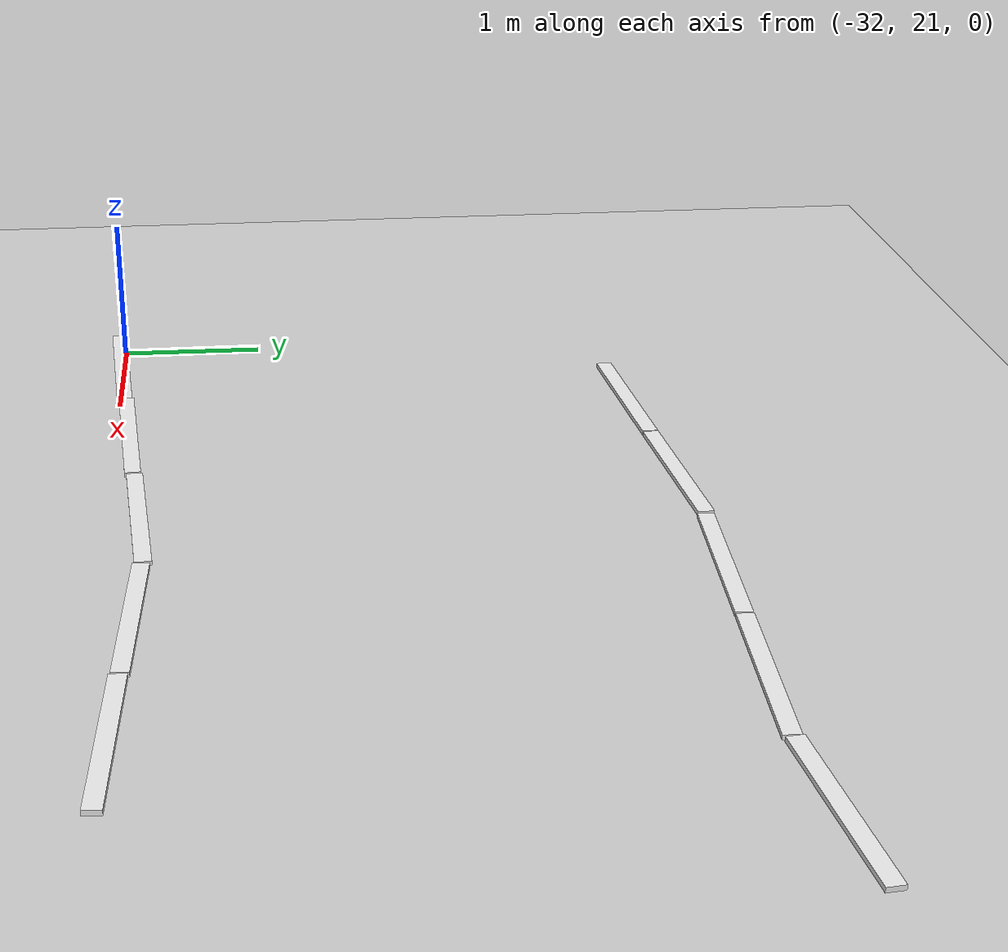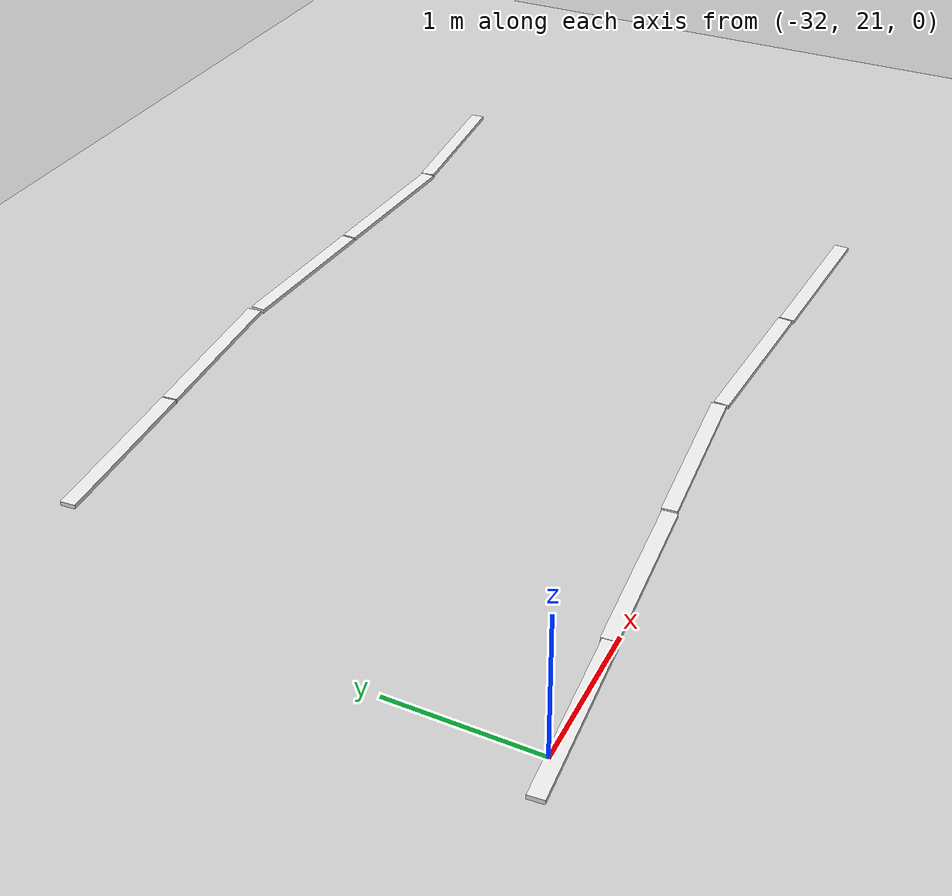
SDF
<sdf version="1.7">
 <world name="default">
  <model name="ground_plane">
   <static>1</static>
   <link name="link">
    <collision name="collision">
     <geometry><plane><normal>0 0 1</normal><size>100 100</size></plane></geometry>
     <surface><friction><ode><mu>100</mu><mu2>50</mu2></ode></friction></surface>
    </collision>
    <visual name="visual">
     <cast_shadows>0</cast_shadows>
     <geometry><plane><normal>0 0 1</normal><size>100 100</size></plane></geometry>
     <material>
      <script><uri>file://media/materials/scripts/gazebo.material</uri><name>Gazebo/Grey</name></script>
     </material>
    </visual>
   </link>
  </model>
  <model name="road_way_clone_clone_clone_0_clone_clone_clone_clone_0_clone_0_clone_0_clone_clone_clone_clone_clone_clone_clone_8">
   <link name="link">
    <inertial>
     <mass>1</mass>
     <inertia>
      <ixx>0.166667</ixx>
      <ixy>0</ixy>
      <ixz>0</ixz>
      <iyy>0.166667</iyy>
      <iyz>0</iyz>
      <izz>0.166667</izz>
     </inertia>
    </inertial>
    <visual name="visual">
     <geometry><box><size>0.106644 1.22348 0.03129</size></box></geometry>
     <material>
      <script><name>Gazebo/White</name><uri>file://media/materials/scripts/gazebo.material</uri></script>
      <shader type="pixel"><normal_map>__default__</normal_map></shader>
      <ambient>1 1 1 1</ambient>
      <diffuse>1 1 1 1</diffuse>
      <specular>0 0 0 1</specular>
      <emissive>0 0 0 1</emissive>
     </material>
    </visual>
    <collision name="collision">
     <geometry><box><size>0.10644 1.22348 0.03129</size></box></geometry>
     <surface>
      <friction>
       <ode><mu>1</mu><mu2>1</mu2><fdir1>0 0 0</fdir1><slip1>0</slip1><slip2>0</slip2></ode>
       <torsional>
        <coefficient>1</coefficient>
        <patch_radius>0</patch_radius>
        <surface_radius>0</surface_radius>
        <use_patch_radius>1</use_patch_radius>
        <ode><slip>0</slip></ode>
       </torsional>
      </friction>
      <bounce><restitution_coefficient>0</restitution_coefficient><threshold>1e+06</threshold></bounce>
      <contact>
       <collide_without_contact>0</collide_without_contact>
       <collide_without_contact_bitmask>1</collide_without_contact_bitmask>
       <collide_bitmask>1</collide_bitmask>
       <ode>
        <soft_cfm>0</soft_cfm>
        <soft_erp>0.2</soft_erp>
        <kp>1e+13</kp>
        <kd>1</kd>
        <max_vel>0.01</max_vel>
        <min_depth>0</min_depth>
       </ode>
       <bullet>
        <split_impulse>1</split_impulse>
        <split_impulse_penetration_threshold>-0.01</split_impulse_penetration_threshold>
        <soft_cfm>0</soft_cfm>
        <soft_erp>0.2</soft_erp>
        <kp>1e+13</kp>
        <kd>1</kd>
       </bullet>
      </contact>
     </surface>
    </collision>
   </link>
   <static>0</static>
   <pose>-25.859 24.6643 0.015638 1.1e-05 0 1.66873</pose>
  </model>
  <model name="road_way_clone_clone_clone_0_clone_clone_clone_clone_0_clone_0_clone_0_clone_clone_clone_clone_clone_clone_clone_10">
   <link name="link">
    <inertial>
     <mass>1</mass>
     <inertia>
      <ixx>0.166667</ixx>
      <ixy>0</ixy>
      <ixz>0</ixz>
      <iyy>0.166667</iyy>
      <iyz>0</iyz>
      <izz>0.166667</izz>
     </inertia>
    </inertial>
    <visual name="visual">
     <geometry><box><size>0.106644 1.22348 0.03129</size></box></geometry>
     <material>
      <script><name>Gazebo/White</name><uri>file://media/materials/scripts/gazebo.material</uri></script>
      <shader type="pixel"><normal_map>__default__</normal_map></shader>
      <ambient>1 1 1 1</ambient>
      <diffuse>1 1 1 1</diffuse>
      <specular>0 0 0 1</specular>
      <emissive>0 0 0 1</emissive>
     </material>
    </visual>
    <collision name="collision">
     <geometry><box><size>0.10644 1.22348 0.03129</size></box></geometry>
     <surface>
      <friction>
       <ode><mu>1</mu><mu2>1</mu2><fdir1>0 0 0</fdir1><slip1>0</slip1><slip2>0</slip2></ode>
       <torsional>
        <coefficient>1</coefficient>
        <patch_radius>0</patch_radius>
        <surface_radius>0</surface_radius>
        <use_patch_radius>1</use_patch_radius>
        <ode><slip>0</slip></ode>
       </torsional>
      </friction>
      <bounce><restitution_coefficient>0</restitution_coefficient><threshold>1e+06</threshold></bounce>
      <contact>
       <collide_without_contact>0</collide_without_contact>
       <collide_without_contact_bitmask>1</collide_without_contact_bitmask>
       <collide_bitmask>1</collide_bitmask>
       <ode>
        <soft_cfm>0</soft_cfm>
        <soft_erp>0.2</soft_erp>
        <kp>1e+13</kp>
        <kd>1</kd>
        <max_vel>0.01</max_vel>
        <min_depth>0</min_depth>
       </ode>
       <bullet>
        <split_impulse>1</split_impulse>
        <split_impulse_penetration_threshold>-0.01</split_impulse_penetration_threshold>
        <soft_cfm>0</soft_cfm>
        <soft_erp>0.2</soft_erp>
        <kp>1e+13</kp>
        <kd>1</kd>
       </bullet>
      </contact>
     </surface>
    </collision>
   </link>
   <static>0</static>
   <pose>-27.0862 24.629 0.015638 1.1e-05 0 1.51263</pose>
  </model>
  <model name="road_way_clone_clone_clone_0_clone_clone_clone_clone_0_clone_0_clone_0_clone_clone_clone_clone_clone_clone_clone_10_clone">
   <link name="link">
    <inertial>
     <mass>1</mass>
     <inertia>
      <ixx>0.166667</ixx>
      <ixy>0</ixy>
      <ixz>0</ixz>
      <iyy>0.166667</iyy>
      <iyz>0</iyz>
      <izz>0.166667</izz>
     </inertia>
    </inertial>
    <visual name="visual">
     <geometry><box><size>0.106644 1.22348 0.03129</size></box></geometry>
     <material>
      <script><name>Gazebo/White</name><uri>file://media/materials/scripts/gazebo.material</uri></script>
      <shader type="pixel"><normal_map>__default__</normal_map></shader>
      <ambient>1 1 1 1</ambient>
      <diffuse>1 1 1 1</diffuse>
      <specular>0 0 0 1</specular>
      <emissive>0 0 0 1</emissive>
     </material>
    </visual>
    <collision name="collision">
     <geometry><box><size>0.10644 1.22348 0.03129</size></box></geometry>
     <surface>
      <friction>
       <ode><mu>1</mu><mu2>1</mu2><fdir1>0 0 0</fdir1><slip1>0</slip1><slip2>0</slip2></ode>
       <torsional>
        <coefficient>1</coefficient>
        <patch_radius>0</patch_radius>
        <surface_radius>0</surface_radius>
        <use_patch_radius>1</use_patch_radius>
        <ode><slip>0</slip></ode>
       </torsional>
      </friction>
      <bounce><restitution_coefficient>0</restitution_coefficient><threshold>1e+06</threshold></bounce>
      <contact>
       <collide_without_contact>0</collide_without_contact>
       <collide_without_contact_bitmask>1</collide_without_contact_bitmask>
       <collide_bitmask>1</collide_bitmask>
       <ode>
        <soft_cfm>0</soft_cfm>
        <soft_erp>0.2</soft_erp>
        <kp>1e+13</kp>
        <kd>1</kd>
        <max_vel>0.01</max_vel>
        <min_depth>0</min_depth>
       </ode>
       <bullet>
        <split_impulse>1</split_impulse>
        <split_impulse_penetration_threshold>-0.01</split_impulse_penetration_threshold>
        <soft_cfm>0</soft_cfm>
        <soft_erp>0.2</soft_erp>
        <kp>1e+13</kp>
        <kd>1</kd>
       </bullet>
      </contact>
     </surface>
    </collision>
   </link>
   <static>0</static>
   <pose>-26.7674 21.1168 0.015638 -1.1e-05 0 1.51427</pose>
  </model>
  <model name="road_way_clone_clone_clone_0_clone_clone_clone_clone_0_clone_0_clone_0_clone_clone_clone_clone_clone_clone_clone_10_clone_0">
   <link name="link">
    <inertial>
     <mass>1</mass>
     <inertia>
      <ixx>0.166667</ixx>
      <ixy>0</ixy>
      <ixz>0</ixz>
      <iyy>0.166667</iyy>
      <iyz>0</iyz>
      <izz>0.166667</izz>
     </inertia>
    </inertial>
    <visual name="visual">
     <geometry><box><size>0.106644 1.22348 0.03129</size></box></geometry>
     <material>
      <script><name>Gazebo/White</name><uri>file://media/materials/scripts/gazebo.material</uri></script>
      <shader type="pixel"><normal_map>__default__</normal_map></shader>
      <ambient>1 1 1 1</ambient>
      <diffuse>1 1 1 1</diffuse>
      <specular>0 0 0 1</specular>
      <emissive>0 0 0 1</emissive>
     </material>
    </visual>
    <collision name="collision">
     <geometry><box><size>0.10644 1.22348 0.03129</size></box></geometry>
     <surface>
      <friction>
       <ode><mu>1</mu><mu2>1</mu2><fdir1>0 0 0</fdir1><slip1>0</slip1><slip2>0</slip2></ode>
       <torsional>
        <coefficient>1</coefficient>
        <patch_radius>0</patch_radius>
        <surface_radius>0</surface_radius>
        <use_patch_radius>1</use_patch_radius>
        <ode><slip>0</slip></ode>
       </torsional>
      </friction>
      <bounce><restitution_coefficient>0</restitution_coefficient><threshold>1e+06</threshold></bounce>
      <contact>
       <collide_without_contact>0</collide_without_contact>
       <collide_without_contact_bitmask>1</collide_without_contact_bitmask>
       <collide_bitmask>1</collide_bitmask>
       <ode>
        <soft_cfm>0</soft_cfm>
        <soft_erp>0.2</soft_erp>
        <kp>1e+13</kp>
        <kd>1</kd>
        <max_vel>0.01</max_vel>
        <min_depth>0</min_depth>
       </ode>
       <bullet>
        <split_impulse>1</split_impulse>
        <split_impulse_penetration_threshold>-0.01</split_impulse_penetration_threshold>
        <soft_cfm>0</soft_cfm>
        <soft_erp>0.2</soft_erp>
        <kp>1e+13</kp>
        <kd>1</kd>
       </bullet>
      </contact>
     </surface>
    </collision>
   </link>
   <static>0</static>
   <pose>-28.3217 24.6998 0.015638 1.1e-05 0 1.51263</pose>
  </model>
  <model name="road_way_clone_clone_clone_0_clone_clone_clone_clone_0_clone_0_clone_0_clone_clone_clone_clone_clone_clone_clone_10_clone_1">
   <link name="link">
    <inertial>
     <mass>1</mass>
     <inertia>
      <ixx>0.166667</ixx>
      <ixy>0</ixy>
      <ixz>0</ixz>
      <iyy>0.166667</iyy>
      <iyz>0</iyz>
      <izz>0.166667</izz>
     </inertia>
    </inertial>
    <visual name="visual">
     <geometry><box><size>0.106644 1.22348 0.03129</size></box></geometry>
     <material>
      <script><name>Gazebo/White</name><uri>file://media/materials/scripts/gazebo.material</uri></script>
      <shader type="pixel"><normal_map>__default__</normal_map></shader>
      <ambient>1 1 1 1</ambient>
      <diffuse>1 1 1 1</diffuse>
      <specular>0 0 0 1</specular>
      <emissive>0 0 0 1</emissive>
     </material>
    </visual>
    <collision name="collision">
     <geometry><box><size>0.10644 1.22348 0.03129</size></box></geometry>
     <surface>
      <friction>
       <ode><mu>1</mu><mu2>1</mu2><fdir1>0 0 0</fdir1><slip1>0</slip1><slip2>0</slip2></ode>
       <torsional>
        <coefficient>1</coefficient>
        <patch_radius>0</patch_radius>
        <surface_radius>0</surface_radius>
        <use_patch_radius>1</use_patch_radius>
        <ode><slip>0</slip></ode>
       </torsional>
      </friction>
      <bounce><restitution_coefficient>0</restitution_coefficient><threshold>1e+06</threshold></bounce>
      <contact>
       <collide_without_contact>0</collide_without_contact>
       <collide_without_contact_bitmask>1</collide_without_contact_bitmask>
       <collide_bitmask>1</collide_bitmask>
       <ode>
        <soft_cfm>0</soft_cfm>
        <soft_erp>0.2</soft_erp>
        <kp>1e+13</kp>
        <kd>1</kd>
        <max_vel>0.01</max_vel>
        <min_depth>0</min_depth>
       </ode>
       <bullet>
        <split_impulse>1</split_impulse>
        <split_impulse_penetration_threshold>-0.01</split_impulse_penetration_threshold>
        <soft_cfm>0</soft_cfm>
        <soft_erp>0.2</soft_erp>
        <kp>1e+13</kp>
        <kd>1</kd>
       </bullet>
      </contact>
     </surface>
    </collision>
   </link>
   <static>0</static>
   <pose>-28 21.1959 0.015638 -1.1e-05 0 1.51288</pose>
  </model>
  <model name="road_way_clone_clone_clone_0_clone_clone_clone_clone_0_clone_0_clone_0_clone_clone_clone_clone_clone_clone_clone_10_clone_2">
   <link name="link">
    <inertial>
     <mass>1</mass>
     <inertia>
      <ixx>0.166667</ixx>
      <ixy>0</ixy>
      <ixz>0</ixz>
      <iyy>0.166667</iyy>
      <iyz>0</iyz>
      <izz>0.166667</izz>
     </inertia>
    </inertial>
    <visual name="visual">
     <geometry><box><size>0.106644 1.22348 0.03129</size></box></geometry>
     <material>
      <script><name>Gazebo/White</name><uri>file://media/materials/scripts/gazebo.material</uri></script>
      <shader type="pixel"><normal_map>__default__</normal_map></shader>
      <ambient>1 1 1 1</ambient>
      <diffuse>1 1 1 1</diffuse>
      <specular>0 0 0 1</specular>
      <emissive>0 0 0 1</emissive>
     </material>
    </visual>
    <collision name="collision">
     <geometry><box><size>0.10644 1.22348 0.03129</size></box></geometry>
     <surface>
      <friction>
       <ode><mu>1</mu><mu2>1</mu2><fdir1>0 0 0</fdir1><slip1>0</slip1><slip2>0</slip2></ode>
       <torsional>
        <coefficient>1</coefficient>
        <patch_radius>0</patch_radius>
        <surface_radius>0</surface_radius>
        <use_patch_radius>1</use_patch_radius>
        <ode><slip>0</slip></ode>
       </torsional>
      </friction>
      <bounce><restitution_coefficient>0</restitution_coefficient><threshold>1e+06</threshold></bounce>
      <contact>
       <collide_without_contact>0</collide_without_contact>
       <collide_without_contact_bitmask>1</collide_without_contact_bitmask>
       <collide_bitmask>1</collide_bitmask>
       <ode>
        <soft_cfm>0</soft_cfm>
        <soft_erp>0.2</soft_erp>
        <kp>1e+13</kp>
        <kd>1</kd>
        <max_vel>0.01</max_vel>
        <min_depth>0</min_depth>
       </ode>
       <bullet>
        <split_impulse>1</split_impulse>
        <split_impulse_penetration_threshold>-0.01</split_impulse_penetration_threshold>
        <soft_cfm>0</soft_cfm>
        <soft_erp>0.2</soft_erp>
        <kp>1e+13</kp>
        <kd>1</kd>
       </bullet>
      </contact>
     </surface>
    </collision>
   </link>
   <static>0</static>
   <pose>-29.57 24.6973 0.015638 1.1e-05 0 1.65022</pose>
  </model>
  <model name="road_way_clone_clone_clone_0_clone_clone_clone_clone_0_clone_0_clone_0_clone_clone_clone_clone_clone_clone_clone_10_clone_2_clone">
   <link name="link">
    <inertial>
     <mass>1</mass>
     <inertia>
      <ixx>0.166667</ixx>
      <ixy>0</ixy>
      <ixz>0</ixz>
      <iyy>0.166667</iyy>
      <iyz>0</iyz>
      <izz>0.166667</izz>
     </inertia>
    </inertial>
    <visual name="visual">
     <geometry><box><size>0.106644 1.22348 0.03129</size></box></geometry>
     <material>
      <script><name>Gazebo/White</name><uri>file://media/materials/scripts/gazebo.material</uri></script>
      <shader type="pixel"><normal_map>__default__</normal_map></shader>
      <ambient>1 1 1 1</ambient>
      <diffuse>1 1 1 1</diffuse>
      <specular>0 0 0 1</specular>
      <emissive>0 0 0 1</emissive>
     </material>
    </visual>
    <collision name="collision">
     <geometry><box><size>0.10644 1.22348 0.03129</size></box></geometry>
     <surface>
      <friction>
       <ode><mu>1</mu><mu2>1</mu2><fdir1>0 0 0</fdir1><slip1>0</slip1><slip2>0</slip2></ode>
       <torsional>
        <coefficient>1</coefficient>
        <patch_radius>0</patch_radius>
        <surface_radius>0</surface_radius>
        <use_patch_radius>1</use_patch_radius>
        <ode><slip>0</slip></ode>
       </torsional>
      </friction>
      <bounce><restitution_coefficient>0</restitution_coefficient><threshold>1e+06</threshold></bounce>
      <contact>
       <collide_without_contact>0</collide_without_contact>
       <collide_without_contact_bitmask>1</collide_without_contact_bitmask>
       <collide_bitmask>1</collide_bitmask>
       <ode>
        <soft_cfm>0</soft_cfm>
        <soft_erp>0.2</soft_erp>
        <kp>1e+13</kp>
        <kd>1</kd>
        <max_vel>0.01</max_vel>
        <min_depth>0</min_depth>
       </ode>
       <bullet>
        <split_impulse>1</split_impulse>
        <split_impulse_penetration_threshold>-0.01</split_impulse_penetration_threshold>
        <soft_cfm>0</soft_cfm>
        <soft_erp>0.2</soft_erp>
        <kp>1e+13</kp>
        <kd>1</kd>
       </bullet>
      </contact>
     </surface>
    </collision>
   </link>
   <static>0</static>
   <pose>-29.2313 21.1942 0.015638 -1.1e-05 0 1.65034</pose>
  </model>
  <model name="road_way_clone_clone_clone_0_clone_clone_clone_clone_0_clone_0_clone_0_clone_clone_clone_clone_clone_clone_clone_10_clone_2_clone_0">
   <link name="link">
    <inertial>
     <mass>1</mass>
     <inertia>
      <ixx>0.166667</ixx>
      <ixy>0</ixy>
      <ixz>0</ixz>
      <iyy>0.166667</iyy>
      <iyz>0</iyz>
      <izz>0.166667</izz>
     </inertia>
    </inertial>
    <visual name="visual">
     <geometry><box><size>0.106644 1.22348 0.03129</size></box></geometry>
     <material>
      <script><name>Gazebo/White</name><uri>file://media/materials/scripts/gazebo.material</uri></script>
      <shader type="pixel"><normal_map>__default__</normal_map></shader>
      <ambient>1 1 1 1</ambient>
      <diffuse>1 1 1 1</diffuse>
      <specular>0 0 0 1</specular>
      <emissive>0 0 0 1</emissive>
     </material>
    </visual>
    <collision name="collision">
     <geometry><box><size>0.10644 1.22348 0.03129</size></box></geometry>
     <surface>
      <friction>
       <ode><mu>1</mu><mu2>1</mu2><fdir1>0 0 0</fdir1><slip1>0</slip1><slip2>0</slip2></ode>
       <torsional>
        <coefficient>1</coefficient>
        <patch_radius>0</patch_radius>
        <surface_radius>0</surface_radius>
        <use_patch_radius>1</use_patch_radius>
        <ode><slip>0</slip></ode>
       </torsional>
      </friction>
      <bounce><restitution_coefficient>0</restitution_coefficient><threshold>1e+06</threshold></bounce>
      <contact>
       <collide_without_contact>0</collide_without_contact>
       <collide_without_contact_bitmask>1</collide_without_contact_bitmask>
       <collide_bitmask>1</collide_bitmask>
       <ode>
        <soft_cfm>0</soft_cfm>
        <soft_erp>0.2</soft_erp>
        <kp>1e+13</kp>
        <kd>1</kd>
        <max_vel>0.01</max_vel>
        <min_depth>0</min_depth>
       </ode>
       <bullet>
        <split_impulse>1</split_impulse>
        <split_impulse_penetration_threshold>-0.01</split_impulse_penetration_threshold>
        <soft_cfm>0</soft_cfm>
        <soft_erp>0.2</soft_erp>
        <kp>1e+13</kp>
        <kd>1</kd>
       </bullet>
      </contact>
     </surface>
    </collision>
   </link>
   <static>0</static>
   <pose>-30.8003 24.6022 0.015638 -1.1e-05 -0 1.64595</pose>
  </model>
  <model name="road_way_clone_clone_clone_0_clone_clone_clone_clone_0_clone_0_clone_0_clone_clone_clone_clone_clone_clone_clone_10_clone_2_clone_0_clone">
   <link name="link">
    <inertial>
     <mass>1</mass>
     <inertia>
      <ixx>0.166667</ixx>
      <ixy>0</ixy>
      <ixz>0</ixz>
      <iyy>0.166667</iyy>
      <iyz>0</iyz>
      <izz>0.166667</izz>
     </inertia>
    </inertial>
    <visual name="visual">
     <geometry><box><size>0.106644 1.22348 0.03129</size></box></geometry>
     <material>
      <script><name>Gazebo/White</name><uri>file://media/materials/scripts/gazebo.material</uri></script>
      <shader type="pixel"><normal_map>__default__</normal_map></shader>
      <ambient>1 1 1 1</ambient>
      <diffuse>1 1 1 1</diffuse>
      <specular>0 0 0 1</specular>
      <emissive>0 0 0 1</emissive>
     </material>
    </visual>
    <collision name="collision">
     <geometry><box><size>0.10644 1.22348 0.03129</size></box></geometry>
     <surface>
      <friction>
       <ode><mu>1</mu><mu2>1</mu2><fdir1>0 0 0</fdir1><slip1>0</slip1><slip2>0</slip2></ode>
       <torsional>
        <coefficient>1</coefficient>
        <patch_radius>0</patch_radius>
        <surface_radius>0</surface_radius>
        <use_patch_radius>1</use_patch_radius>
        <ode><slip>0</slip></ode>
       </torsional>
      </friction>
      <bounce><restitution_coefficient>0</restitution_coefficient><threshold>1e+06</threshold></bounce>
      <contact>
       <collide_without_contact>0</collide_without_contact>
       <collide_without_contact_bitmask>1</collide_without_contact_bitmask>
       <collide_bitmask>1</collide_bitmask>
       <ode>
        <soft_cfm>0</soft_cfm>
        <soft_erp>0.2</soft_erp>
        <kp>1e+13</kp>
        <kd>1</kd>
        <max_vel>0.01</max_vel>
        <min_depth>0</min_depth>
       </ode>
       <bullet>
        <split_impulse>1</split_impulse>
        <split_impulse_penetration_threshold>-0.01</split_impulse_penetration_threshold>
        <soft_cfm>0</soft_cfm>
        <soft_erp>0.2</soft_erp>
        <kp>1e+13</kp>
        <kd>1</kd>
       </bullet>
      </contact>
     </surface>
    </collision>
   </link>
   <static>0</static>
   <pose>-30.4661 21.0878 0.015638 -1.1e-05 -0 1.64566</pose>
  </model>
  <model name="road_way_clone_clone_clone_0_clone_clone_clone_clone_0_clone_0_clone_0_clone_clone_clone_clone_clone_clone_clone_10_clone_2_clone_0_clone_0_clone">
   <link name="link">
    <inertial>
     <mass>1</mass>
     <inertia>
      <ixx>0.166667</ixx>
      <ixy>0</ixy>
      <ixz>0</ixz>
      <iyy>0.166667</iyy>
      <iyz>0</iyz>
      <izz>0.166667</izz>
     </inertia>
    </inertial>
    <visual name="visual">
     <geometry><box><size>0.106644 1.22348 0.03129</size></box></geometry>
     <material>
      <script><name>Gazebo/White</name><uri>file://media/materials/scripts/gazebo.material</uri></script>
      <shader type="pixel"><normal_map>__default__</normal_map></shader>
      <ambient>1 1 1 1</ambient>
      <diffuse>1 1 1 1</diffuse>
      <specular>0 0 0 1</specular>
      <emissive>0 0 0 1</emissive>
     </material>
    </visual>
    <collision name="collision">
     <geometry><box><size>0.10644 1.22348 0.03129</size></box></geometry>
     <surface>
      <friction>
       <ode><mu>1</mu><mu2>1</mu2><fdir1>0 0 0</fdir1><slip1>0</slip1><slip2>0</slip2></ode>
       <torsional>
        <coefficient>1</coefficient>
        <patch_radius>0</patch_radius>
        <surface_radius>0</surface_radius>
        <use_patch_radius>1</use_patch_radius>
        <ode><slip>0</slip></ode>
       </torsional>
      </friction>
      <bounce><restitution_coefficient>0</restitution_coefficient><threshold>1e+06</threshold></bounce>
      <contact>
       <collide_without_contact>0</collide_without_contact>
       <collide_without_contact_bitmask>1</collide_without_contact_bitmask>
       <collide_bitmask>1</collide_bitmask>
       <ode>
        <soft_cfm>0</soft_cfm>
        <soft_erp>0.2</soft_erp>
        <kp>1e+13</kp>
        <kd>1</kd>
        <max_vel>0.01</max_vel>
        <min_depth>0</min_depth>
       </ode>
       <bullet>
        <split_impulse>1</split_impulse>
        <split_impulse_penetration_threshold>-0.01</split_impulse_penetration_threshold>
        <soft_cfm>0</soft_cfm>
        <soft_erp>0.2</soft_erp>
        <kp>1e+13</kp>
        <kd>1</kd>
       </bullet>
      </contact>
     </surface>
    </collision>
   </link>
   <static>0</static>
   <pose>-31.6881 20.9843 0.015638 -1.1e-05 -0 1.64407</pose>
  </model>
 </world>
</sdf>
